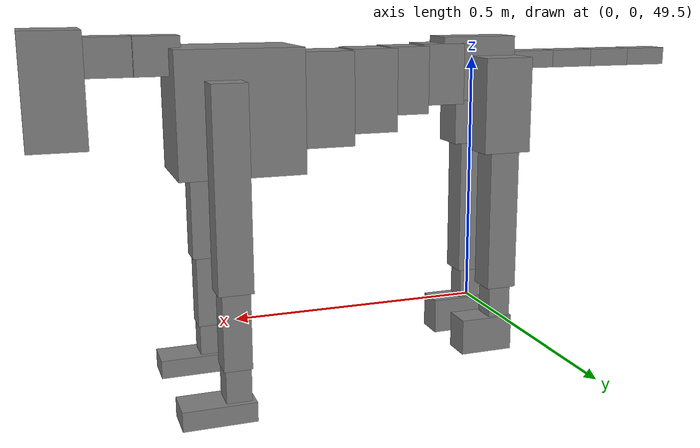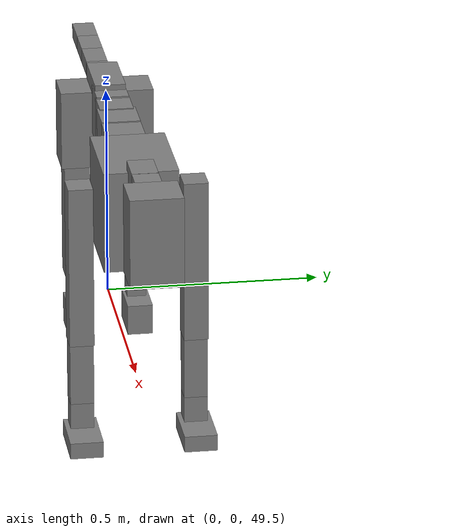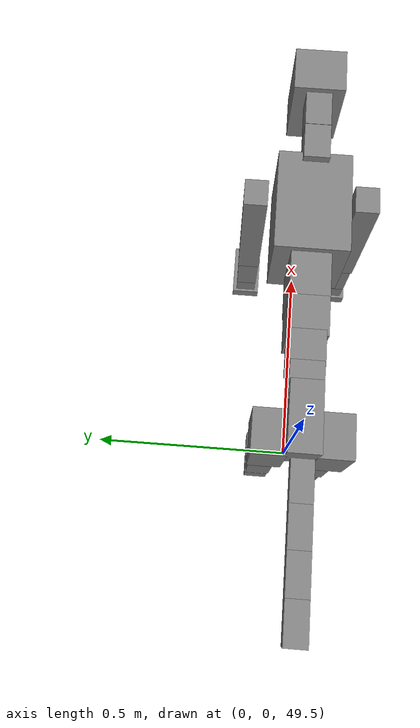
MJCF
<mujoco model="dog">

    <default>
        <joint armature="0.02" stiffness="1" damping="0.2" limited="true"/>
        <geom condim="3" friction="1 0.05 0.05" margin="0.01"/>
        <motor ctrllimited="true" ctrlrange="-1.0 1.0" forcelimited="true" gear="50"/>
    </default>

    <compiler inertiafromgeom="true" angle="radian"/>

    <option timestep="0.016" iterations="50" tolerance="1e-10" solver="Newton" jacobian="dense" cone="pyramidal"/>

    <size nconmax="20000" njmax="60000" nstack="5000000"/>
    <visual>
        <map force="0.1" zfar="30"/>
        <rgba haze="0.15 0.25 0.35 1"/>
        <quality shadowsize="2048"/>
        <global offwidth="800" offheight="800"/>
    </visual>

    <asset>
        <texture type="skybox" builtin="gradient" rgb1="0.3 0.5 0.7" rgb2="0 0 0" width="512" height="512"/>
        <texture name="texplane" type="2d" builtin="checker" rgb1=".2 .3 .4" rgb2=".1 0.15 0.2" width="512" height="512"
                 mark="cross" markrgb=".8 .8 .8"/>
        <texture name="texgeom" type="cube" builtin="flat" mark="cross" width="127" height="1278" rgb1="0.8 0.6 0.4"
                 rgb2="0.8 0.6 0.4" markrgb="1 1 1" random="0.01"/>

        <material name="matplane" reflectance="0.3" texture="texplane" texrepeat="1 1" texuniform="true"/>
        <material name="matgeom" texture="texgeom" texuniform="true" rgba="0.8 0.6 .4 1"/>
    </asset>

    <worldbody>
        <geom name="floor" pos="0 0 0" size="0 0 .25" type="plane" material="matplane" condim="3"/>

        <light directional="false" diffuse=".2 .2 .2" specular="0 0 0" pos="0 0 5" dir="0 0 -1" castshadow="false"/>
        <light mode="targetbodycom" target="torso" directional="false" diffuse=".8 .8 .8" specular="0.3 0.3 0.3"
               pos="0 0 4.0" dir="0 0 -1"/>

        <body name="root" pos="0 0 50">
            <freejoint name="root_1"/>
            <geom type="box" pos="0 0 -0.02" size="0.0774  0.0358  0.063" density="2030"/>

            <body name="spine1" pos="0.054 0 0">
                <joint name="spine1_y" axis="0 1 0" range="0 0.7" limited="true"/>
                <geom type="box" pos="0.02375 0 -0.03" size="0.04375  0.0375  0.05985" density="2030"/>

                <body name="spine2" pos="0.0612 0 0">
                    <joint name="spine2_y" axis="0 1 0" range="-0.15 0.15" limited="true"/>
                    <geom type="box" pos="0.03555  0  -0.04" size="0.04055  0.039  0.06615" density="2030"/>

                    <body name="spine3" pos="0.0730 0 0">
                        <joint name="spine3_y" axis="0 1 0" range="-0.15 0.15" limited="true"/>
                        <geom type="box" pos="0.03555  0  -0.057" size="0.04555  0.0445  0.081" density="2030"/>

                        <body name="spine4" pos="0.0780 0 0">
                            <joint name="spine4_y" axis="0 1 0" range="-0.15 0.15" limited="true"/>
                            <geom type="box" pos="0.05265  0  -0.07" size="0.05265  0.045  0.09135" density="2030"/>

                            <body name="torso" pos="0.1082 0 0">
                                <joint name="torso_y" axis="0 1 0" range="-0.15 0.15" limited="true"/>
                                <geom type="box" pos="0.11925  0  -0.085" size="0.11925  0.085  0.11745"
                                      density="2030"/>

                                <body name="neck1" pos="0.2160  0   0.0180">
                                    <joint name="neck1_y" axis="0 1 0" range="-1.2  -1" limited="true"/>
                                    <geom type="box" pos="0.0423  0  0" size="0.0423  0.03  0.036" density="2325"/>

                                    <body name="neck2" pos="0.0853  0  0">
                                        <joint name="neck2_y" axis="0 1 0" range="0.1  0" limited="true"/>
                                        <geom type="box" pos="0.0423  0  0" size="0.0423  0.03  0.036" density="2325"/>

                                        <body name="head" pos="0.0853  0  0">
                                            <joint name="head_y" axis="0 1 0" range="-0.3  -0.2" limited="true"/>
                                            <geom type="box" pos="0.0531  0  -0.055" size="0.0531  0.06  0.1044"
                                                  density="4030"/>

                                        </body>
                                    </body>
                                </body>

                                <body name="front_shoulder" pos="0.156  0   -0.0480">
                                    <joint name="front_shoulder_y" axis="0 1 0" range="-1 1.5" limited="true"/>
                                    <geom type="box" pos="0 0.13 -0.1625" size="0.0328  0.0281  0.1892" density="1158"/>
                                    <geom type="box" pos="0 -0.13 -0.1625" size="0.0328  0.0281  0.1892"
                                          density="1158"/>

                                    <body name="front_elbow" pos="0  0  -0.3250">
                                        <joint name="front_elbow_y" axis="0 1 0" range="-2 0" limited="true"/>
                                        <geom type="box" pos="0 0.13 -0.0853" size="0.0265  0.0271  0.0853"
                                              density="1081"/>
                                        <geom type="box" pos="0 -0.13 -0.0853" size="0.0265  0.0271  0.0853"
                                              density="1081"/>

                                        <body name="front_wrist" pos="0  0  -0.1707">
                                            <joint name="front_wrist_y" axis="0 1 0" range="-0.2 0" limited="true"/>
                                            <geom type="box" pos="0 0.13 -0.0382" size="0.0240  0.0267  0.0513"
                                                  density="1664"/>
                                            <geom type="box" pos="0 -0.13 -0.0382" size="0.0240  0.0267  0.0513"
                                                  density="1664"/>

                                            <body name="front_finger_end" pos="0  0  -0.0763">
                                                <joint name="front_finger_y" axis="0 1 0" range="-0.4 1"
                                                       limited="true"/>
                                                <geom type="box" pos="0.0377  0.13  -0.0038"
                                                      size="0.0692  0.0377  0.0188" density="1515"/>
                                                <geom type="box" pos="0.0377  -0.13  -0.0038"
                                                      size="0.0692  0.0377  0.0188" density="1515"/>

                                            </body>

                                        </body>
                                    </body>
                                </body>

                            </body>
                        </body>
                    </body>
                </body>
            </body>

            <body name="back_hip" pos="-0.03 0 -0.018">
                <joint name="back_hip_y" axis="0 1 0" range="-1.5 0.3" limited="true"/>
                <geom type="box" pos="0 0.07 -0.0706" size="0.0491  0.0385  0.0934" density="1154"/>
                <geom type="box" pos="0 -0.07 -0.0706" size="0.0491  0.0385  0.0934" density="1154"/>

                <body name="back_knee" pos="0  0  -0.1412">
                    <joint name="back_knee_y" axis="0 1 0" range="0 2.8" limited="true"/>
                    <geom type="box" pos="0 0.07 -0.1438" size="0.0305  0.0300  0.1593" density="1227"/>
                    <geom type="box" pos="0 -0.07 -0.1438" size="0.0305  0.0300  0.1593" density="1227"/>

                    <body name="back_ankle" pos="0  0  -0.2876">
                        <joint name="back_ankle_y" axis="0 1 0" range="-2.2 0" limited="true"/>
                        <geom type="box" pos="0 0.07 -0.0463" size="0.0230  0.0230  0.0576" density="1284"/>
                        <geom type="box" pos="0 -0.07 -0.0463" size="0.0230  0.0230  0.0576" density="1284"/>

                        <body name="back_toe_end" pos="0  0  -0.0927">
                            <joint name="back_toe_y" axis="0 1 0" range="-0.4 1" limited="true"/>
                            <geom type="box" pos="0.0297  0.07  -0.0210" size="0.0545  0.0297  0.0360" density="1515"/>
                            <geom type="box" pos="0.0297  -0.07  -0.0210" size="0.0545  0.0297  0.0360" density="1515"/>

                        </body>
                    </body>
                </body>
            </body>

            <body name="tail1" pos="-0.074 0 -0.006">
                <joint name="tail1_y" axis="0 1 0" range="-0.2 0.2" limited="true"/>
                <geom type="box" pos="-0.0536  0  0" size="0.045  0.025  0.0175" density="1587"/>

                <body name="tail2" pos="-0.09 0 0">
                    <joint name="tail2_y" axis="0 1 0" range="-0.2 0.2" limited="true"/>
                    <geom type="box" pos="-0.0536  0  0" size="0.045  0.025  0.0175" density="1587"/>

                    <body name="tail3" pos="-0.09 0 0">
                        <joint name="tail3_y" axis="0 1 0" range="-0.2 0.2" limited="true"/>
                        <geom type="box" pos="-0.0536  0  0" size="0.045  0.025  0.0175" density="1587"/>

                        <body name="tail4" pos="-0.09 0 0">
                            <joint name="tail4_y" axis="0 1 0" range="-0.2 0.2" limited="true"/>
                            <geom type="box" pos="-0.0536  0  0" size="0.045  0.025  0.0175" density="1587"/>

                        </body>
                    </body>
                </body>
            </body>
        </body>
    </worldbody>

    <actuator>
        <motor joint="spine1_y" forcerange="-150 150     "/>
        <motor joint="spine2_y" forcerange="-150 150     "/>
        <motor joint="spine3_y" forcerange="-150 150     "/>
        <motor joint="spine4_y" forcerange="-150 150     "/>
        <motor joint="torso_y" forcerange="-150 150     "/>
        <motor joint="neck1_y" forcerange="-100 100       "/>
        <motor joint="neck2_y" forcerange="-100 100       "/>
        <motor joint="head_y" forcerange="-150 150       "/>
        <motor joint="front_shoulder_y" forcerange="-152.21 134.87"/>
        <motor joint="front_elbow_y" forcerange="-119.18 177.63"/>
        <motor joint="front_wrist_y" forcerange="-93.07 120.53"/>
        <motor joint="front_finger_y" forcerange="-62.22 99.11"/>
        <motor joint="back_hip_y" forcerange="-333.72 379.88"/>
        <motor joint="back_knee_y" forcerange="-284.78 351.89"/>
        <motor joint="back_angle_y" forcerange="-166.93 101.45"/>
        <motor joint="back_toe_y" forcerange="-23.47 134.14"/>
        <motor joint="tail1_y" forcerange="-50 50     "/>
        <motor joint="tail2_y" forcerange="-50 50     "/>
        <motor joint="tail3_y" forcerange="-50 50     "/>
        <motor joint="tail4_y" forcerange="-50 50     "/>
    </actuator>
</mujoco>
